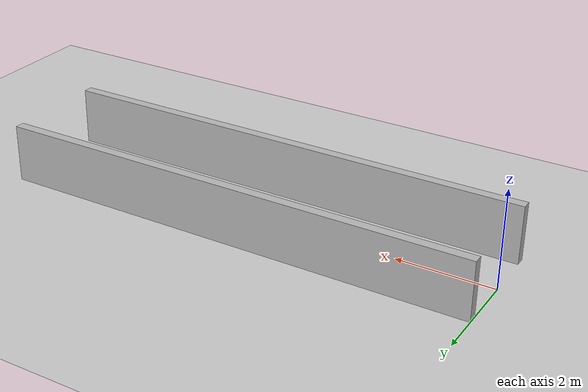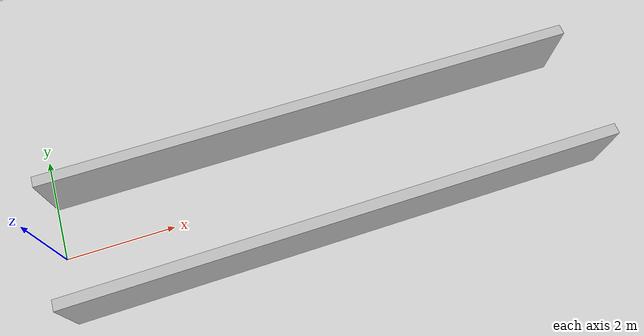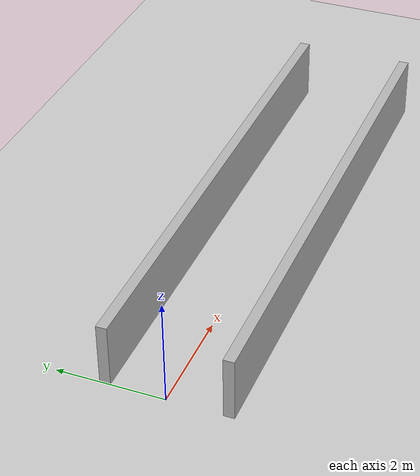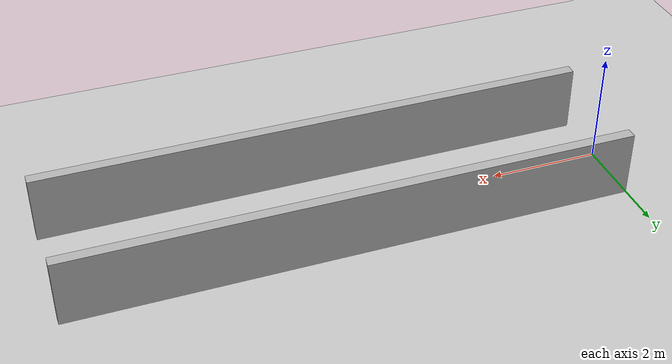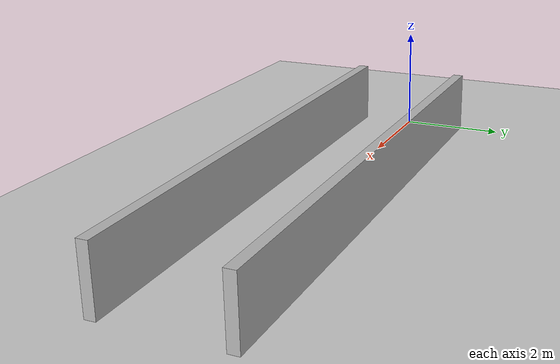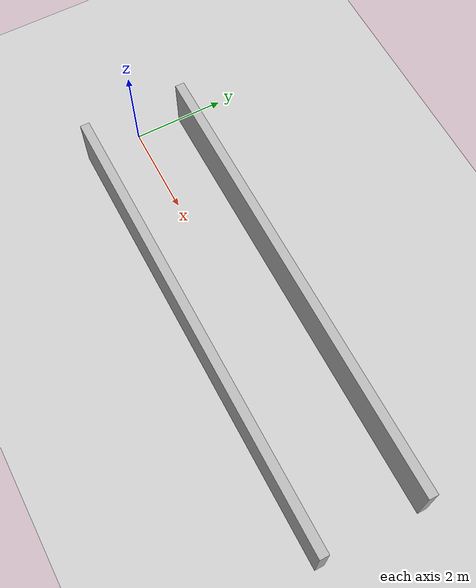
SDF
<?xml version="1.0"?>
<sdf version="1.6">
  <world name="v2-04g-p1-support-s5293">
    <gravity>0 0 -9.81</gravity>
    <physics name="v2_deterministic" type="ode">
      <max_step_size>0.002</max_step_size>
      <real_time_update_rate>500</real_time_update_rate>
    </physics>
    <include>
      <uri>model://sun</uri>
    </include>
    <include>
      <uri>model://ground_plane</uri>
    </include>
    <model name="corridor-left">
      <static>true</static>
      <pose>5.004605817 1.102304038 0.600000000 0 0 0.000148090</pose>
      <link name="link">
        <collision name="collision">
          <geometry>
            <box>
              <size>10.000000 0.200000 1.200000</size>
            </box>
          </geometry>
        </collision>
        <visual name="visual">
          <geometry>
            <box>
              <size>10.000000 0.200000 1.200000</size>
            </box>
          </geometry>
        </visual>
      </link>
    </model>
    <model name="corridor-right">
      <static>true</static>
      <pose>5.001267200 -1.099487241 0.600000000 0 0 0.001963018</pose>
      <link name="link">
        <collision name="collision">
          <geometry>
            <box>
              <size>10.000000 0.200000 1.200000</size>
            </box>
          </geometry>
        </collision>
        <visual name="visual">
          <geometry>
            <box>
              <size>10.000000 0.200000 1.200000</size>
            </box>
          </geometry>
        </visual>
      </link>
    </model>
  </world>
</sdf>
